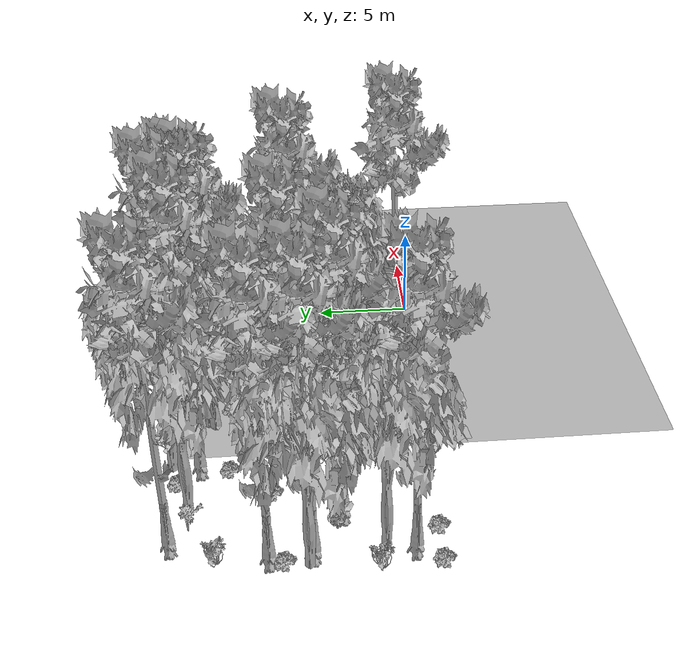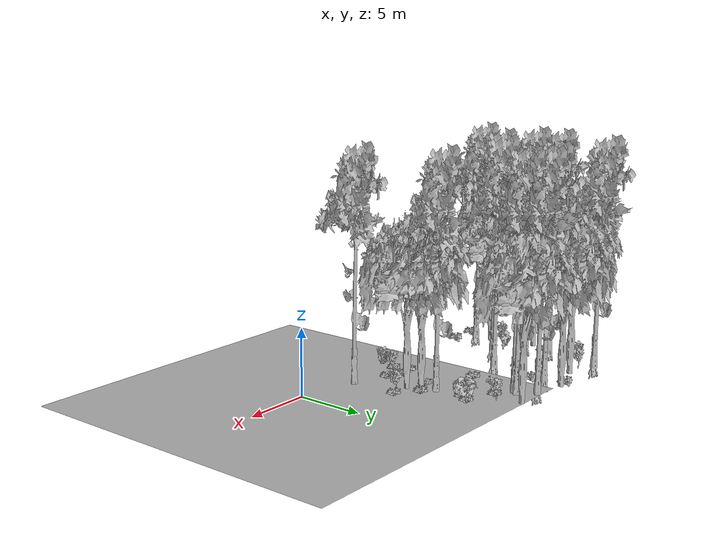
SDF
<sdf version="1.7">
 <world name="default">
  <model name="ground_plane">
   <static>1</static>
   <link name="link">
    <collision name="collision">
     <pose>-50 0 0 0 -0 0</pose>
     <geometry><plane><normal>0 0 1</normal><size>80 80</size></plane></geometry>
     <surface><contact><ode><min_depth>0.01</min_depth><max_vel>0</max_vel></ode></contact></surface>
    </collision>
    <visual name="grass">
     <cast_shadows>0</cast_shadows>
     <geometry>
      <mesh>
       <scale>0.46714285714285714 0.46714285714285714 0.1</scale>
       <uri>file://grass_plane/meshes/grass_plane.dae</uri>
      </mesh>
     </geometry>
    </visual>
   </link>
  </model>
  <model name="Tree 31">
   <static>1</static>
   <pose>-6.870779393974125 5.24699856919311 0 1.57079 -0 0</pose>
   <link name="link">
    <collision name="collision">
     <geometry><mesh><scale>3.5 5 3.5</scale><uri>model://tree_2/meshes/tree_2.obj</uri></mesh></geometry>
    </collision>
    <visual name="visual">
     <geometry><mesh><scale>3.5 5 3.5</scale><uri>model://tree_2/meshes/tree_2.obj</uri></mesh></geometry>
    </visual>
   </link>
  </model>
  <model name="Tree 54">
   <static>1</static>
   <pose>-19.653383371329312 6.101281182001657 0 1.57079 -0 0</pose>
   <link name="link">
    <collision name="collision">
     <geometry><mesh><scale>3.5 5 3.5</scale><uri>model://tree_9/meshes/tree_9.obj</uri></mesh></geometry>
    </collision>
    <visual name="visual">
     <geometry><mesh><scale>3.5 5 3.5</scale><uri>model://tree_9/meshes/tree_9.obj</uri></mesh></geometry>
    </visual>
   </link>
  </model>
  <model name="Tree 71">
   <static>1</static>
   <pose>-4.557397574338907 0.9594201116423307 0 1.57079 -0 0</pose>
   <link name="link">
    <collision name="collision">
     <geometry><mesh><scale>3.5 5 3.5</scale><uri>model://tree_9/meshes/tree_9.obj</uri></mesh></geometry>
    </collision>
    <visual name="visual">
     <geometry><mesh><scale>3.5 5 3.5</scale><uri>model://tree_9/meshes/tree_9.obj</uri></mesh></geometry>
    </visual>
   </link>
  </model>
  <model name="Tree 72">
   <static>1</static>
   <pose>-20.585841844493796 6.281364791055665 0 1.57079 -0 0</pose>
   <link name="link">
    <collision name="collision">
     <geometry><mesh><scale>3.5 5 3.5</scale><uri>model://tree_2/meshes/tree_2.obj</uri></mesh></geometry>
    </collision>
    <visual name="visual">
     <geometry><mesh><scale>3.5 5 3.5</scale><uri>model://tree_2/meshes/tree_2.obj</uri></mesh></geometry>
    </visual>
   </link>
  </model>
  <model name="Tree 106">
   <static>1</static>
   <pose>-9.94533489036127 11.192501940334125 0 1.57079 -0 0</pose>
   <link name="link">
    <collision name="collision">
     <geometry><mesh><scale>3.5 5 3.5</scale><uri>model://tree_9/meshes/tree_9.obj</uri></mesh></geometry>
    </collision>
    <visual name="visual">
     <geometry><mesh><scale>3.5 5 3.5</scale><uri>model://tree_9/meshes/tree_9.obj</uri></mesh></geometry>
    </visual>
   </link>
  </model>
  <model name="Tree 150">
   <static>1</static>
   <pose>-14.041647489891368 6.7479413986532535 0 1.57079 -0 0</pose>
   <link name="link">
    <collision name="collision">
     <geometry><mesh><scale>3.5 5 3.5</scale><uri>model://tree_9/meshes/tree_9.obj</uri></mesh></geometry>
    </collision>
    <visual name="visual">
     <geometry><mesh><scale>3.5 5 3.5</scale><uri>model://tree_9/meshes/tree_9.obj</uri></mesh></geometry>
    </visual>
   </link>
  </model>
  <model name="Tree 174">
   <static>1</static>
   <pose>-10.892126075930705 12.326279668004233 0 1.57079 -0 0</pose>
   <link name="link">
    <collision name="collision">
     <geometry><mesh><scale>3.5 5 3.5</scale><uri>model://tree_9/meshes/tree_9.obj</uri></mesh></geometry>
    </collision>
    <visual name="visual">
     <geometry><mesh><scale>3.5 5 3.5</scale><uri>model://tree_9/meshes/tree_9.obj</uri></mesh></geometry>
    </visual>
   </link>
  </model>
  <model name="Tree 258">
   <static>1</static>
   <pose>-18.58345701140395 12.664063599563491 0 1.57079 -0 0</pose>
   <link name="link">
    <collision name="collision">
     <geometry><mesh><scale>3.5 5 3.5</scale><uri>model://tree_9/meshes/tree_9.obj</uri></mesh></geometry>
    </collision>
    <visual name="visual">
     <geometry><mesh><scale>3.5 5 3.5</scale><uri>model://tree_9/meshes/tree_9.obj</uri></mesh></geometry>
    </visual>
   </link>
  </model>
  <model name="Tree 263">
   <static>1</static>
   <pose>-13.478362020659652 12.78100714824906 0 1.57079 -0 0</pose>
   <link name="link">
    <collision name="collision">
     <geometry><mesh><scale>3.5 5 3.5</scale><uri>model://tree_2/meshes/tree_2.obj</uri></mesh></geometry>
    </collision>
    <visual name="visual">
     <geometry><mesh><scale>3.5 5 3.5</scale><uri>model://tree_2/meshes/tree_2.obj</uri></mesh></geometry>
    </visual>
   </link>
  </model>
  <model name="Tree 285">
   <static>1</static>
   <pose>-8.649206563969898 12.470216188914051 0 1.57079 -0 0</pose>
   <link name="link">
    <collision name="collision">
     <geometry><mesh><scale>3.5 5 3.5</scale><uri>model://tree_2/meshes/tree_2.obj</uri></mesh></geometry>
    </collision>
    <visual name="visual">
     <geometry><mesh><scale>3.5 5 3.5</scale><uri>model://tree_2/meshes/tree_2.obj</uri></mesh></geometry>
    </visual>
   </link>
  </model>
  <model name="Tree 316">
   <static>1</static>
   <pose>-6.975080422843686 6.427099133120613 0 1.57079 -0 0</pose>
   <link name="link">
    <collision name="collision">
     <geometry><mesh><scale>3.5 5 3.5</scale><uri>model://tree_9/meshes/tree_9.obj</uri></mesh></geometry>
    </collision>
    <visual name="visual">
     <geometry><mesh><scale>3.5 5 3.5</scale><uri>model://tree_9/meshes/tree_9.obj</uri></mesh></geometry>
    </visual>
   </link>
  </model>
  <model name="Tree 322">
   <static>1</static>
   <pose>-16.407628311496758 11.85345860298807 0 1.57079 -0 0</pose>
   <link name="link">
    <collision name="collision">
     <geometry><mesh><scale>3.5 5 3.5</scale><uri>model://tree_2/meshes/tree_2.obj</uri></mesh></geometry>
    </collision>
    <visual name="visual">
     <geometry><mesh><scale>3.5 5 3.5</scale><uri>model://tree_2/meshes/tree_2.obj</uri></mesh></geometry>
    </visual>
   </link>
  </model>
  <model name="Tree 365">
   <static>1</static>
   <pose>-17.147141436833017 4.636225784548259 0 1.57079 -0 0</pose>
   <link name="link">
    <collision name="collision">
     <geometry><mesh><scale>3.5 5 3.5</scale><uri>model://tree_9/meshes/tree_9.obj</uri></mesh></geometry>
    </collision>
    <visual name="visual">
     <geometry><mesh><scale>3.5 5 3.5</scale><uri>model://tree_9/meshes/tree_9.obj</uri></mesh></geometry>
    </visual>
   </link>
  </model>
  <model name="Tree 368">
   <static>1</static>
   <pose>-19.80832191089552 8.126945173042657 0 1.57079 -0 0</pose>
   <link name="link">
    <collision name="collision">
     <geometry><mesh><scale>3.5 5 3.5</scale><uri>model://tree_9/meshes/tree_9.obj</uri></mesh></geometry>
    </collision>
    <visual name="visual">
     <geometry><mesh><scale>3.5 5 3.5</scale><uri>model://tree_9/meshes/tree_9.obj</uri></mesh></geometry>
    </visual>
   </link>
  </model>
  <model name="Tree 386">
   <static>1</static>
   <pose>-13.302238880562868 11.467478893035342 0 1.57079 -0 0</pose>
   <link name="link">
    <collision name="collision">
     <geometry><mesh><scale>3.5 5 3.5</scale><uri>model://tree_9/meshes/tree_9.obj</uri></mesh></geometry>
    </collision>
    <visual name="visual">
     <geometry><mesh><scale>3.5 5 3.5</scale><uri>model://tree_9/meshes/tree_9.obj</uri></mesh></geometry>
    </visual>
   </link>
  </model>
  <model name="Tree 427">
   <static>1</static>
   <pose>-6.202166890482211 4.468717496520611 0 1.57079 -0 0</pose>
   <link name="link">
    <collision name="collision">
     <geometry><mesh><scale>3.5 5 3.5</scale><uri>model://tree_2/meshes/tree_2.obj</uri></mesh></geometry>
    </collision>
    <visual name="visual">
     <geometry><mesh><scale>3.5 5 3.5</scale><uri>model://tree_2/meshes/tree_2.obj</uri></mesh></geometry>
    </visual>
   </link>
  </model>
  <model name="Tree 478">
   <static>1</static>
   <pose>-19.803731910512454 2.817486029494738 0 1.57079 -0 0</pose>
   <link name="link">
    <collision name="collision">
     <geometry><mesh><scale>3.5 5 3.5</scale><uri>model://tree_2/meshes/tree_2.obj</uri></mesh></geometry>
    </collision>
    <visual name="visual">
     <geometry><mesh><scale>3.5 5 3.5</scale><uri>model://tree_2/meshes/tree_2.obj</uri></mesh></geometry>
    </visual>
   </link>
  </model>
  <model name="Tree 622">
   <static>1</static>
   <pose>-10.178674349524485 10.842914641276309 0 1.57079 -0 0</pose>
   <link name="link">
    <collision name="collision">
     <geometry><mesh><scale>3.5 5 3.5</scale><uri>model://tree_9/meshes/tree_9.obj</uri></mesh></geometry>
    </collision>
    <visual name="visual">
     <geometry><mesh><scale>3.5 5 3.5</scale><uri>model://tree_9/meshes/tree_9.obj</uri></mesh></geometry>
    </visual>
   </link>
  </model>
  <model name="Tree 631">
   <static>1</static>
   <pose>-19.67144909808367 1.4418227345181691 0 1.57079 -0 0</pose>
   <link name="link">
    <collision name="collision">
     <geometry><mesh><scale>3.5 5 3.5</scale><uri>model://tree_9/meshes/tree_9.obj</uri></mesh></geometry>
    </collision>
    <visual name="visual">
     <geometry><mesh><scale>3.5 5 3.5</scale><uri>model://tree_9/meshes/tree_9.obj</uri></mesh></geometry>
    </visual>
   </link>
  </model>
  <model name="Bush 97">
   <static>1</static>
   <pose>-17.722440492299512 11.84600567296392 0 1.57079 -0 0</pose>
   <link name="link">
    <collision name="collision">
     <geometry><mesh><scale>2 2 2</scale><uri>model://bush_5/meshes/bush_5.obj</uri></mesh></geometry>
     <surface><contact><collide_without_contact>false</collide_without_contact></contact></surface>
    </collision>
    <visual name="visual">
     <geometry><mesh><scale>2 2 2</scale><uri>model://bush_5/meshes/bush_5.obj</uri></mesh></geometry>
    </visual>
   </link>
  </model>
  <model name="Bush 102">
   <static>1</static>
   <pose>-9.394140612997067 -0.15128878246292743 0 1.57079 -0 0</pose>
   <link name="link">
    <collision name="collision">
     <geometry><mesh><scale>2 2 2</scale><uri>model://bush_4/meshes/bush_4.obj</uri></mesh></geometry>
     <surface><contact><collide_without_contact>false</collide_without_contact></contact></surface>
    </collision>
    <visual name="visual">
     <geometry><mesh><scale>2 2 2</scale><uri>model://bush_4/meshes/bush_4.obj</uri></mesh></geometry>
    </visual>
   </link>
  </model>
  <model name="Bush 115">
   <static>1</static>
   <pose>-18.210880431576633 4.9758430182964375 0 1.57079 -0 0</pose>
   <link name="link">
    <collision name="collision">
     <geometry><mesh><scale>2 2 2</scale><uri>model://bush_0/meshes/bush_0.obj</uri></mesh></geometry>
     <surface><contact><collide_without_contact>false</collide_without_contact></contact></surface>
    </collision>
    <visual name="visual">
     <geometry><mesh><scale>2 2 2</scale><uri>model://bush_0/meshes/bush_0.obj</uri></mesh></geometry>
    </visual>
   </link>
  </model>
  <model name="Bush 117">
   <static>1</static>
   <pose>-20.65856014499558 0.26811523680657956 0 1.57079 -0 0</pose>
   <link name="link">
    <collision name="collision">
     <geometry><mesh><scale>2 2 2</scale><uri>model://bush_2/meshes/bush_2.obj</uri></mesh></geometry>
     <surface><contact><collide_without_contact>false</collide_without_contact></contact></surface>
    </collision>
    <visual name="visual">
     <geometry><mesh><scale>2 2 2</scale><uri>model://bush_2/meshes/bush_2.obj</uri></mesh></geometry>
    </visual>
   </link>
  </model>
  <model name="Bush 220">
   <static>1</static>
   <pose>-7.735911601203778 4.904997790051453 0 1.57079 -0 0</pose>
   <link name="link">
    <collision name="collision">
     <geometry><mesh><scale>2 2 2</scale><uri>model://bush_2/meshes/bush_2.obj</uri></mesh></geometry>
     <surface><contact><collide_without_contact>false</collide_without_contact></contact></surface>
    </collision>
    <visual name="visual">
     <geometry><mesh><scale>2 2 2</scale><uri>model://bush_2/meshes/bush_2.obj</uri></mesh></geometry>
    </visual>
   </link>
  </model>
  <model name="Bush 221">
   <static>1</static>
   <pose>-18.518268752222124 0.25891018380680464 0 1.57079 -0 0</pose>
   <link name="link">
    <collision name="collision">
     <geometry><mesh><scale>2 2 2</scale><uri>model://bush_2/meshes/bush_2.obj</uri></mesh></geometry>
     <surface><contact><collide_without_contact>false</collide_without_contact></contact></surface>
    </collision>
    <visual name="visual">
     <geometry><mesh><scale>2 2 2</scale><uri>model://bush_2/meshes/bush_2.obj</uri></mesh></geometry>
    </visual>
   </link>
  </model>
  <model name="Bush 227">
   <static>1</static>
   <pose>-7.245334478661007 1.8373978669749533 0 1.57079 -0 0</pose>
   <link name="link">
    <collision name="collision">
     <geometry><mesh><scale>2 2 2</scale><uri>model://bush_2/meshes/bush_2.obj</uri></mesh></geometry>
     <surface><contact><collide_without_contact>false</collide_without_contact></contact></surface>
    </collision>
    <visual name="visual">
     <geometry><mesh><scale>2 2 2</scale><uri>model://bush_2/meshes/bush_2.obj</uri></mesh></geometry>
    </visual>
   </link>
  </model>
  <model name="Bush 241">
   <static>1</static>
   <pose>-6.689679794107086 9.173082725183562 0 1.57079 -0 0</pose>
   <link name="link">
    <collision name="collision">
     <geometry><mesh><scale>2 2 2</scale><uri>model://bush_2/meshes/bush_2.obj</uri></mesh></geometry>
     <surface><contact><collide_without_contact>false</collide_without_contact></contact></surface>
    </collision>
    <visual name="visual">
     <geometry><mesh><scale>2 2 2</scale><uri>model://bush_2/meshes/bush_2.obj</uri></mesh></geometry>
    </visual>
   </link>
  </model>
  <model name="Bush 252">
   <static>1</static>
   <pose>-19.955797391310618 10.486422901418209 0 1.57079 -0 0</pose>
   <link name="link">
    <collision name="collision">
     <geometry><mesh><scale>2 2 2</scale><uri>model://bush_4/meshes/bush_4.obj</uri></mesh></geometry>
     <surface><contact><collide_without_contact>false</collide_without_contact></contact></surface>
    </collision>
    <visual name="visual">
     <geometry><mesh><scale>2 2 2</scale><uri>model://bush_4/meshes/bush_4.obj</uri></mesh></geometry>
    </visual>
   </link>
  </model>
  <model name="Bush 261">
   <static>1</static>
   <pose>-11.205205614662745 6.773759518391358 0 1.57079 -0 0</pose>
   <link name="link">
    <collision name="collision">
     <geometry><mesh><scale>2 2 2</scale><uri>model://bush_2/meshes/bush_2.obj</uri></mesh></geometry>
     <surface><contact><collide_without_contact>false</collide_without_contact></contact></surface>
    </collision>
    <visual name="visual">
     <geometry><mesh><scale>2 2 2</scale><uri>model://bush_2/meshes/bush_2.obj</uri></mesh></geometry>
    </visual>
   </link>
  </model>
  <model name="Bush 302">
   <static>1</static>
   <pose>-20.227899176010506 7.401434373052098 0 1.57079 -0 0</pose>
   <link name="link">
    <collision name="collision">
     <geometry><mesh><scale>2 2 2</scale><uri>model://bush_2/meshes/bush_2.obj</uri></mesh></geometry>
     <surface><contact><collide_without_contact>false</collide_without_contact></contact></surface>
    </collision>
    <visual name="visual">
     <geometry><mesh><scale>2 2 2</scale><uri>model://bush_2/meshes/bush_2.obj</uri></mesh></geometry>
    </visual>
   </link>
  </model>
  <model name="Bush 322">
   <static>1</static>
   <pose>-8.505245978899335 1.411897835730187 0 1.57079 -0 0</pose>
   <link name="link">
    <collision name="collision">
     <geometry><mesh><scale>2 2 2</scale><uri>model://bush_5/meshes/bush_5.obj</uri></mesh></geometry>
     <surface><contact><collide_without_contact>false</collide_without_contact></contact></surface>
    </collision>
    <visual name="visual">
     <geometry><mesh><scale>2 2 2</scale><uri>model://bush_5/meshes/bush_5.obj</uri></mesh></geometry>
    </visual>
   </link>
  </model>
  <model name="Bush 330">
   <static>1</static>
   <pose>-8.980610264040486 10.035336614805061 0 1.57079 -0 0</pose>
   <link name="link">
    <collision name="collision">
     <geometry><mesh><scale>2 2 2</scale><uri>model://bush_2/meshes/bush_2.obj</uri></mesh></geometry>
     <surface><contact><collide_without_contact>false</collide_without_contact></contact></surface>
    </collision>
    <visual name="visual">
     <geometry><mesh><scale>2 2 2</scale><uri>model://bush_2/meshes/bush_2.obj</uri></mesh></geometry>
    </visual>
   </link>
  </model>
  <model name="Bush 352">
   <static>1</static>
   <pose>-14.571468387660747 12.500977419717792 0 1.57079 -0 0</pose>
   <link name="link">
    <collision name="collision">
     <geometry><mesh><scale>2 2 2</scale><uri>model://bush_2/meshes/bush_2.obj</uri></mesh></geometry>
     <surface><contact><collide_without_contact>false</collide_without_contact></contact></surface>
    </collision>
    <visual name="visual">
     <geometry><mesh><scale>2 2 2</scale><uri>model://bush_2/meshes/bush_2.obj</uri></mesh></geometry>
    </visual>
   </link>
  </model>
  <model name="Bush 381">
   <static>1</static>
   <pose>-8.033376807526924 10.782694394853259 0 1.57079 -0 0</pose>
   <link name="link">
    <collision name="collision">
     <geometry><mesh><scale>2 2 2</scale><uri>model://bush_5/meshes/bush_5.obj</uri></mesh></geometry>
     <surface><contact><collide_without_contact>false</collide_without_contact></contact></surface>
    </collision>
    <visual name="visual">
     <geometry><mesh><scale>2 2 2</scale><uri>model://bush_5/meshes/bush_5.obj</uri></mesh></geometry>
    </visual>
   </link>
  </model>
  <model name="Bush 393">
   <static>1</static>
   <pose>-4.643699359675033 4.447440690003631 0 1.57079 -0 0</pose>
   <link name="link">
    <collision name="collision">
     <geometry><mesh><scale>2 2 2</scale><uri>model://bush_2/meshes/bush_2.obj</uri></mesh></geometry>
     <surface><contact><collide_without_contact>false</collide_without_contact></contact></surface>
    </collision>
    <visual name="visual">
     <geometry><mesh><scale>2 2 2</scale><uri>model://bush_2/meshes/bush_2.obj</uri></mesh></geometry>
    </visual>
   </link>
  </model>
  <model name="Bush 440">
   <static>1</static>
   <pose>-7.189463062779808 8.450100110958033 0 1.57079 -0 0</pose>
   <link name="link">
    <collision name="collision">
     <geometry><mesh><scale>2 2 2</scale><uri>model://bush_2/meshes/bush_2.obj</uri></mesh></geometry>
     <surface><contact><collide_without_contact>false</collide_without_contact></contact></surface>
    </collision>
    <visual name="visual">
     <geometry><mesh><scale>2 2 2</scale><uri>model://bush_2/meshes/bush_2.obj</uri></mesh></geometry>
    </visual>
   </link>
  </model>
  <model name="Bush 454">
   <static>1</static>
   <pose>-9.472583705091179 2.238854911051398 0 1.57079 -0 0</pose>
   <link name="link">
    <collision name="collision">
     <geometry><mesh><scale>2 2 2</scale><uri>model://bush_2/meshes/bush_2.obj</uri></mesh></geometry>
     <surface><contact><collide_without_contact>false</collide_without_contact></contact></surface>
    </collision>
    <visual name="visual">
     <geometry><mesh><scale>2 2 2</scale><uri>model://bush_2/meshes/bush_2.obj</uri></mesh></geometry>
    </visual>
   </link>
  </model>
  <model name="Bush 514">
   <static>1</static>
   <pose>-8.502795509099993 2.3745367933869304 0 1.57079 -0 0</pose>
   <link name="link">
    <collision name="collision">
     <geometry><mesh><scale>2 2 2</scale><uri>model://bush_2/meshes/bush_2.obj</uri></mesh></geometry>
     <surface><contact><collide_without_contact>false</collide_without_contact></contact></surface>
    </collision>
    <visual name="visual">
     <geometry><mesh><scale>2 2 2</scale><uri>model://bush_2/meshes/bush_2.obj</uri></mesh></geometry>
    </visual>
   </link>
  </model>
  <model name="Bush 519">
   <static>1</static>
   <pose>-20.859792967217576 3.0706936241123444 0 1.57079 -0 0</pose>
   <link name="link">
    <collision name="collision">
     <geometry><mesh><scale>2 2 2</scale><uri>model://bush_4/meshes/bush_4.obj</uri></mesh></geometry>
     <surface><contact><collide_without_contact>false</collide_without_contact></contact></surface>
    </collision>
    <visual name="visual">
     <geometry><mesh><scale>2 2 2</scale><uri>model://bush_4/meshes/bush_4.obj</uri></mesh></geometry>
    </visual>
   </link>
  </model>
  <model name="Bush 541">
   <static>1</static>
   <pose>-6.62629932920823 8.900280263263866 0 1.57079 -0 0</pose>
   <link name="link">
    <collision name="collision">
     <geometry><mesh><scale>2 2 2</scale><uri>model://bush_1/meshes/bush_1.obj</uri></mesh></geometry>
     <surface><contact><collide_without_contact>false</collide_without_contact></contact></surface>
    </collision>
    <visual name="visual">
     <geometry><mesh><scale>2 2 2</scale><uri>model://bush_1/meshes/bush_1.obj</uri></mesh></geometry>
    </visual>
   </link>
  </model>
  <model name="Bush 546">
   <static>1</static>
   <pose>-6.175068330179748 5.645081271293179 0 1.57079 -0 0</pose>
   <link name="link">
    <collision name="collision">
     <geometry><mesh><scale>2 2 2</scale><uri>model://bush_2/meshes/bush_2.obj</uri></mesh></geometry>
     <surface><contact><collide_without_contact>false</collide_without_contact></contact></surface>
    </collision>
    <visual name="visual">
     <geometry><mesh><scale>2 2 2</scale><uri>model://bush_2/meshes/bush_2.obj</uri></mesh></geometry>
    </visual>
   </link>
  </model>
  <model name="Bush 560">
   <static>1</static>
   <pose>-5.040444264744863 4.353400702127971 0 1.57079 -0 0</pose>
   <link name="link">
    <collision name="collision">
     <geometry><mesh><scale>2 2 2</scale><uri>model://bush_5/meshes/bush_5.obj</uri></mesh></geometry>
     <surface><contact><collide_without_contact>false</collide_without_contact></contact></surface>
    </collision>
    <visual name="visual">
     <geometry><mesh><scale>2 2 2</scale><uri>model://bush_5/meshes/bush_5.obj</uri></mesh></geometry>
    </visual>
   </link>
  </model>
  <model name="Bush 579">
   <static>1</static>
   <pose>-13.78042281432635 9.989332056795 0 1.57079 -0 0</pose>
   <link name="link">
    <collision name="collision">
     <geometry><mesh><scale>2 2 2</scale><uri>model://bush_2/meshes/bush_2.obj</uri></mesh></geometry>
     <surface><contact><collide_without_contact>false</collide_without_contact></contact></surface>
    </collision>
    <visual name="visual">
     <geometry><mesh><scale>2 2 2</scale><uri>model://bush_2/meshes/bush_2.obj</uri></mesh></geometry>
    </visual>
   </link>
  </model>
  <model name="Bush 595">
   <static>1</static>
   <pose>-15.616763872206516 7.926868760870207 0 1.57079 -0 0</pose>
   <link name="link">
    <collision name="collision">
     <geometry><mesh><scale>2 2 2</scale><uri>model://bush_2/meshes/bush_2.obj</uri></mesh></geometry>
     <surface><contact><collide_without_contact>false</collide_without_contact></contact></surface>
    </collision>
    <visual name="visual">
     <geometry><mesh><scale>2 2 2</scale><uri>model://bush_2/meshes/bush_2.obj</uri></mesh></geometry>
    </visual>
   </link>
  </model>
  <model name="Bush 635">
   <static>1</static>
   <pose>-9.05173829188966 1.0905324714059645 0 1.57079 -0 0</pose>
   <link name="link">
    <collision name="collision">
     <geometry><mesh><scale>2 2 2</scale><uri>model://bush_2/meshes/bush_2.obj</uri></mesh></geometry>
     <surface><contact><collide_without_contact>false</collide_without_contact></contact></surface>
    </collision>
    <visual name="visual">
     <geometry><mesh><scale>2 2 2</scale><uri>model://bush_2/meshes/bush_2.obj</uri></mesh></geometry>
    </visual>
   </link>
  </model>
 </world>
</sdf>
